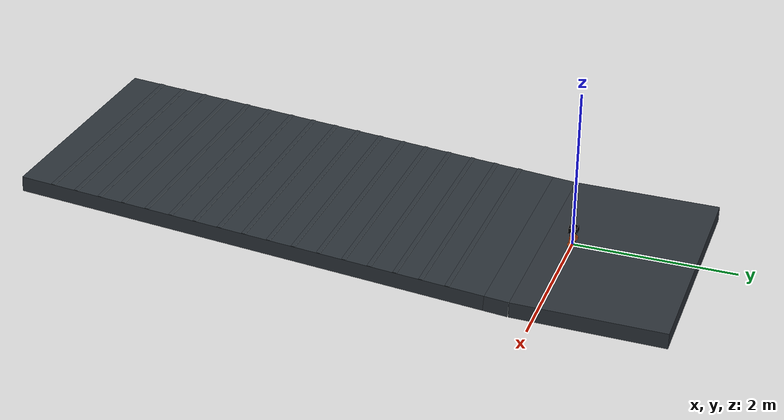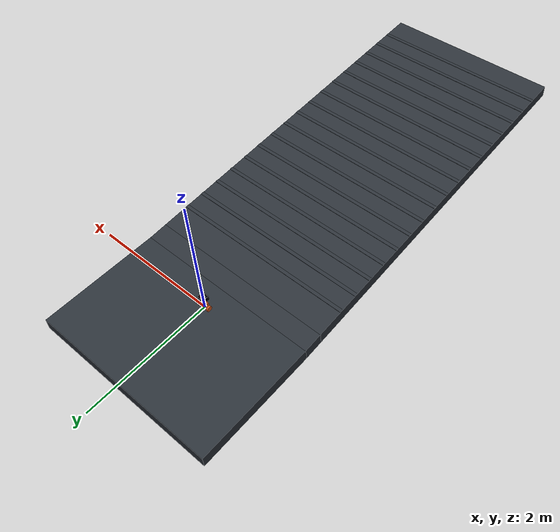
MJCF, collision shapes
<mujoco model="Stage4B ep_021_train_p04p0">
  <compiler angle="radian" meshdir="../../../../assets/upstream_local" />
  <option timestep="0.001" integrator="implicitfast" gravity="0 0 -9.81" />
  <statistic center="0 0 0.10" extent="0.35" />
  <default>
    <default class="visual">
      <geom contype="0" conaffinity="0" group="2" />
    </default>
    <default class="collision">
      <geom group="3" rgba="0.85 0.35 0.12 0.25" solref="0.005 1" solimp="0.9 0.95 0.001" />
    </default>
  </default>
  <asset>
    <texture name="ground_tex" type="2d" builtin="checker" rgb1="0.22 0.25 0.28" rgb2="0.12 0.14 0.16" width="256" height="256" />
    <material name="ground_mat" texture="ground_tex" texrepeat="4 4" reflectance="0.15" />
    <mesh name="main_frame_mesh" file="main_frame.stl" scale="0.001 0.001 0.001" />
    <mesh name="wheel_base_mesh" file="wheel_base.stl" scale="0.001 0.001 0.001" />
    <mesh name="cover_mesh" file="cover.stl" scale="0.001 0.001 0.001" />
    <mesh name="motor_left_mesh" file="motor_left.stl" scale="0.001 0.001 0.001" />
    <mesh name="motor_right_mesh" file="motor_right.stl" scale="0.001 0.001 0.001" />
    <mesh name="mc33926_mesh" file="mc33926.stl" scale="0.001 0.001 0.001" />
    <mesh name="wheel_mesh" file="wheel.stl" scale="0.001 0.001 0.001" />
    <mesh name="adapter_left_mesh" file="adapter_left.stl" scale="0.001 0.001 0.001" />
    <mesh name="adapter_right_mesh" file="adapter_right.stl" scale="0.001 0.001 0.001" />
  </asset>
  <worldbody>
    <light pos="0 -0.5 0.8" dir="0 0.6 -1" diffuse="0.8 0.8 0.8" />
    <geom name="terrain_flat" type="box" pos="0 0.575 -0.1" size="1.5 0.925 0.1" material="ground_mat" friction="0.12 0.005 0.0001" condim="3" />
    <geom name="terrain_transition" type="box" pos="0 -0.506610254913 -0.0892929339644" euler="-0.0698131700798 0 0" size="1.5 0.15 0.1" material="ground_mat" friction="0.12 0.005 0.0001" condim="3" />
    <geom name="terrain_constant_grade" type="box" pos="0 -3.64893701323 0.13043995833" euler="-0.0698131700798 0 0" size="1.5 3 0.1" material="ground_mat" friction="0.12 0.005 0.0001" condim="3" />
    <geom name="terrain_rough_00" type="box" pos="0 -1.09796376827 0.0553100474589" euler="-0.0698131700798 0 0" size="1.5 0.0275 0.003" material="ground_mat" friction="0.12 0.005 0.0001" condim="3" />
    <geom name="terrain_rough_01" type="box" pos="0 -1.41718426436 0.077632119057" euler="-0.0698131700798 0 0" size="1.5 0.0275 0.003" material="ground_mat" friction="0.12 0.005 0.0001" condim="3" />
    <geom name="terrain_rough_02" type="box" pos="0 -1.73640476044 0.0999541906551" euler="-0.0698131700798 0 0" size="1.5 0.0275 0.003" material="ground_mat" friction="0.12 0.005 0.0001" condim="3" />
    <geom name="terrain_rough_03" type="box" pos="0 -2.05562525652 0.122276262253" euler="-0.0698131700798 0 0" size="1.5 0.0275 0.003" material="ground_mat" friction="0.12 0.005 0.0001" condim="3" />
    <geom name="terrain_rough_04" type="box" pos="0 -2.37484575261 0.144598333851" euler="-0.0698131700798 0 0" size="1.5 0.0275 0.003" material="ground_mat" friction="0.12 0.005 0.0001" condim="3" />
    <geom name="terrain_rough_05" type="box" pos="0 -2.69406624869 0.166920405449" euler="-0.0698131700798 0 0" size="1.5 0.0275 0.003" material="ground_mat" friction="0.12 0.005 0.0001" condim="3" />
    <geom name="terrain_rough_06" type="box" pos="0 -3.01328674477 0.189242477048" euler="-0.0698131700798 0 0" size="1.5 0.0275 0.003" material="ground_mat" friction="0.12 0.005 0.0001" condim="3" />
    <geom name="terrain_rough_07" type="box" pos="0 -3.33250724086 0.211564548646" euler="-0.0698131700798 0 0" size="1.5 0.0275 0.003" material="ground_mat" friction="0.12 0.005 0.0001" condim="3" />
    <geom name="terrain_rough_08" type="box" pos="0 -3.65172773694 0.233886620244" euler="-0.0698131700798 0 0" size="1.5 0.0275 0.003" material="ground_mat" friction="0.12 0.005 0.0001" condim="3" />
    <geom name="terrain_rough_09" type="box" pos="0 -3.97094823302 0.256208691842" euler="-0.0698131700798 0 0" size="1.5 0.0275 0.003" material="ground_mat" friction="0.12 0.005 0.0001" condim="3" />
    <geom name="terrain_rough_10" type="box" pos="0 -4.29016872911 0.27853076344" euler="-0.0698131700798 0 0" size="1.5 0.0275 0.003" material="ground_mat" friction="0.12 0.005 0.0001" condim="3" />
    <geom name="terrain_rough_11" type="box" pos="0 -4.60938922519 0.300852835038" euler="-0.0698131700798 0 0" size="1.5 0.0275 0.003" material="ground_mat" friction="0.12 0.005 0.0001" condim="3" />
    <geom name="terrain_rough_12" type="box" pos="0 -4.92860972127 0.323174906636" euler="-0.0698131700798 0 0" size="1.5 0.0275 0.003" material="ground_mat" friction="0.12 0.005 0.0001" condim="3" />
    <geom name="terrain_rough_13" type="box" pos="0 -5.24783021735 0.345496978234" euler="-0.0698131700798 0 0" size="1.5 0.0275 0.003" material="ground_mat" friction="0.12 0.005 0.0001" condim="3" />
    <geom name="terrain_rough_14" type="box" pos="0 -5.56705071344 0.367819049833" euler="-0.0698131700798 0 0" size="1.5 0.0275 0.003" material="ground_mat" friction="0.12 0.005 0.0001" condim="3" />
    <geom name="terrain_rough_15" type="box" pos="0 -5.88627120952 0.390141121431" euler="-0.0698131700798 0 0" size="1.5 0.0275 0.003" material="ground_mat" friction="0.12 0.005 0.0001" condim="3" />
    <geom name="terrain_rough_16" type="box" pos="0 -6.2054917056 0.412463193029" euler="-0.0698131700798 0 0" size="1.5 0.0275 0.003" material="ground_mat" friction="0.12 0.005 0.0001" condim="3" />
    <body name="chassis" pos="0 0 0.043">
      <freejoint name="root" />
      <inertial pos="0.0001592717873 -0.001394466535 0.03368627387" mass="0.8173706489" fullinertia="0.0009508052638 0.001636345835 0.0009938057434 -1.163464906e-07 -4.840496598e-06 3.454944565e-05" />
      <geom name="main_frame_visual" class="visual" type="mesh" mesh="main_frame_mesh" rgba="0.12 0.42 0.72 1" />
      <geom name="wheel_base_visual" class="visual" type="mesh" mesh="wheel_base_mesh" rgba="0.95 0.50 0.10 1" />
      <geom name="cover_visual" class="visual" type="mesh" mesh="cover_mesh" rgba="0.18 0.72 0.32 0.72" />
      <geom name="motor_left_visual" class="visual" type="mesh" mesh="motor_left_mesh" rgba="0.45 0.47 0.50 1" />
      <geom name="motor_right_visual" class="visual" type="mesh" mesh="motor_right_mesh" rgba="0.45 0.47 0.50 1" />
      <geom name="mc33926_visual" class="visual" type="mesh" mesh="mc33926_mesh" rgba="0.08 0.36 0.18 1" />
      <geom name="battery_1_visual" class="visual" type="box" pos="0 -0.012 0.038" size="0.035 0.007 0.025" rgba="0.15 0.25 0.75 1" />
      <geom name="battery_2_visual" class="visual" type="box" pos="0 0.012 0.038" size="0.035 0.007 0.025" rgba="0.15 0.25 0.75 1" />
      <geom name="electronics_lump_visual" class="visual" type="box" pos="0 -0.024 0.067" size="0.035 0.006 0.0425" rgba="0.10 0.42 0.20 0.65" />
      <geom name="wheel_base_collision" class="collision" type="box" pos="0 0.0005 0.0042" size="0.074 0.0201 0.0198" />
      <geom name="lower_chassis_collision" class="collision" type="box" pos="0.001 -0.0015 0.038" size="0.0595 0.0325 0.038" />
      <geom name="upper_chassis_collision" class="collision" type="capsule" fromto="-0.024 -0.0015 0.096 0.026 -0.0015 0.096" size="0.033" />
      <geom name="basket_floor" class="collision" type="box" pos="0 0 0.137" size="0.055 0.052 0.003" friction="0.024 0.005 0.0001" rgba="0.18 0.30 0.48 0.65" />
      <geom name="basket_front_wall" class="collision" type="box" pos="0 -0.052 0.170" size="0.055 0.003 0.033" friction="0.024 0.005 0.0001" rgba="0 0 0 0" />
      <geom name="basket_rear_wall" class="collision" type="box" pos="0 0.052 0.170" size="0.055 0.003 0.033" friction="0.024 0.005 0.0001" rgba="0 0 0 0" />
      <geom name="basket_left_wall" class="collision" type="box" pos="-0.055 0 0.170" size="0.003 0.052 0.033" friction="0.024 0.005 0.0001" rgba="0 0 0 0" />
      <geom name="basket_right_wall" class="collision" type="box" pos="0.055 0 0.170" size="0.003 0.052 0.033" friction="0.024 0.005 0.0001" rgba="0 0 0 0" />
      <site name="imu_site" type="box" pos="0 0 0.020" quat="1 0 0 0" size="0.004 0.003 0.001" rgba="1 0.15 0.05 1" />
      <body name="left_wheel" pos="-0.0885 0 0">
        <joint name="left_wheel_hinge" type="hinge" axis="1 0 0" damping="0.002" frictionloss="0.002" />
        <inertial pos="0.001407549168 -2.310217342e-08 4.024972882e-05" mass="0.1051" fullinertia="8.559060347e-05 4.760138372e-05 4.763051958e-05 2.677568832e-11 -3.525425309e-08 -1.463149106e-11" />
        <geom name="left_wheel_visual" class="visual" type="mesh" mesh="wheel_mesh" rgba="0.04 0.05 0.06 1" />
        <geom name="left_adapter_visual" class="visual" type="mesh" mesh="adapter_left_mesh" rgba="0.12 0.48 0.82 1" />
        <geom name="left_wheel_collision" class="collision" type="cylinder" size="0.042 0.012" quat="0.7071067812 0 0.7071067812 0" friction="1 0.005 0.0001" />
      </body>
      <body name="right_wheel" pos="0.0885 0 0">
        <joint name="right_wheel_hinge" type="hinge" axis="1 0 0" damping="0.002" frictionloss="0.002" />
        <inertial pos="-0.001407437868 -2.310217342e-08 -4.019113045e-05" mass="0.1051" fullinertia="8.559060397e-05 4.760141714e-05 4.763055251e-05 -2.601653908e-11 -3.526339188e-08 1.57007511e-11" />
        <geom name="right_wheel_visual" class="visual" type="mesh" mesh="wheel_mesh" rgba="0.04 0.05 0.06 1" />
        <geom name="right_adapter_visual" class="visual" type="mesh" mesh="adapter_right_mesh" rgba="0.12 0.48 0.82 1" />
        <geom name="right_wheel_collision" class="collision" type="cylinder" size="0.042 0.012" quat="0.7071067812 0 0.7071067812 0" friction="1 0.005 0.0001" />
      </body>
    </body>
    <body name="moving_payload" pos="0 0 0.204">
      <freejoint name="moving_payload_free" />
      <inertial pos="0 0 0" mass="0.20" diaginertia="0.0000533333333 0.0001333333333 0.0001333333333" />
      <geom name="moving_payload_collision" class="collision" type="box" size="0.040 0.020 0.020" friction="0.024 0.005 0.0001" rgba="0.78 0.18 0.12 1" />
    </body>
  </worldbody>
  <actuator>
    <motor name="left_wheel_torque" joint="left_wheel_hinge" gear="1" ctrllimited="true" ctrlrange="-0.63 0.63" forcelimited="true" forcerange="-0.63 0.63" />
    <motor name="right_wheel_torque" joint="right_wheel_hinge" gear="1" ctrllimited="true" ctrlrange="-0.63 0.63" forcelimited="true" forcerange="-0.63 0.63" />
  </actuator>
  <sensor>
    <accelerometer name="imu_accelerometer" site="imu_site" />
    <gyro name="imu_gyro" site="imu_site" />
    <jointpos name="left_wheel_angle" joint="left_wheel_hinge" />
    <jointpos name="right_wheel_angle" joint="right_wheel_hinge" />
  </sensor>
  <keyframe>
    <key name="upright" qpos="0 0 0.043 1 0 0 0 0 0 0 0 0.204 1 0 0 0" />
  </keyframe>
</mujoco>
